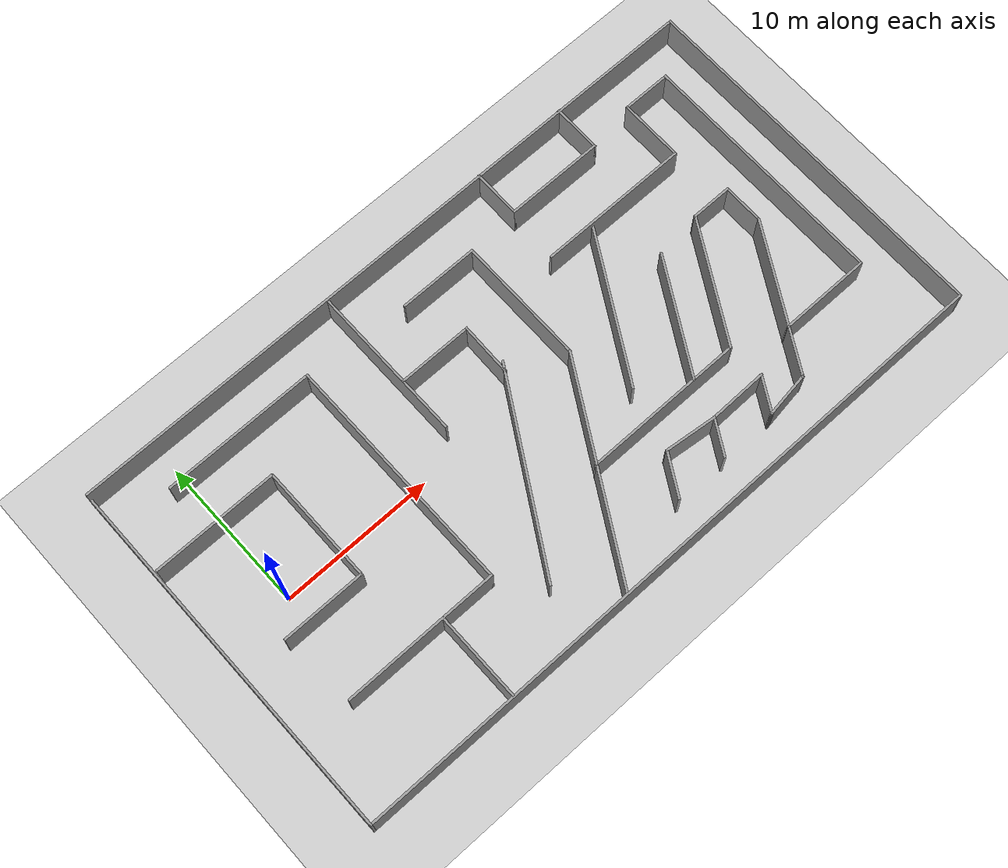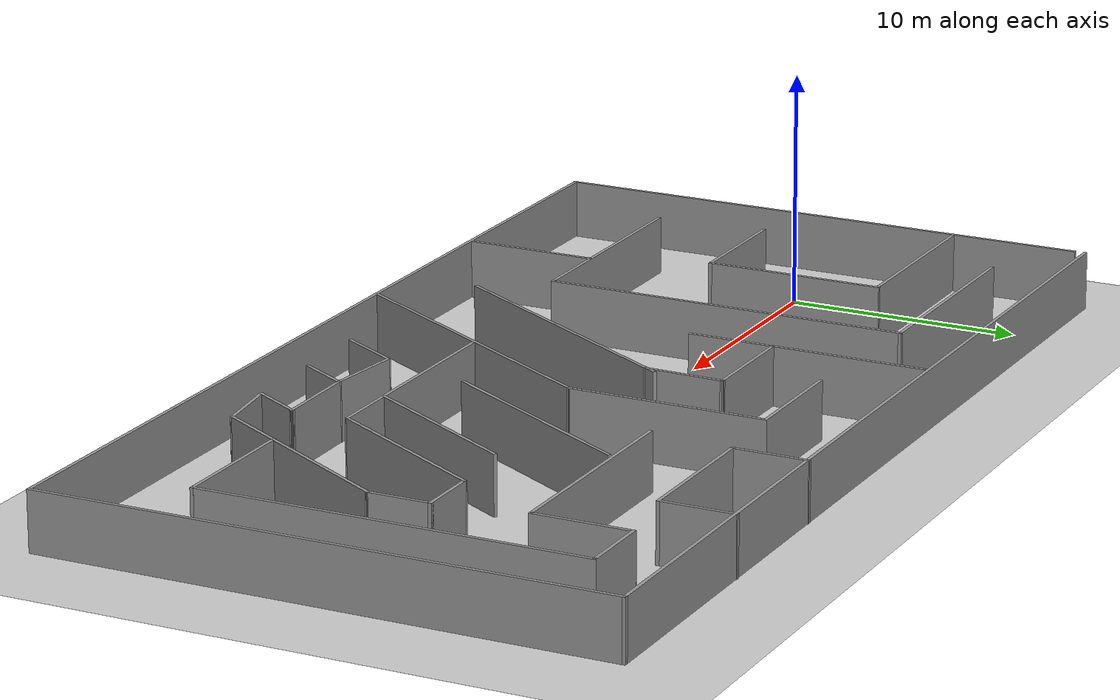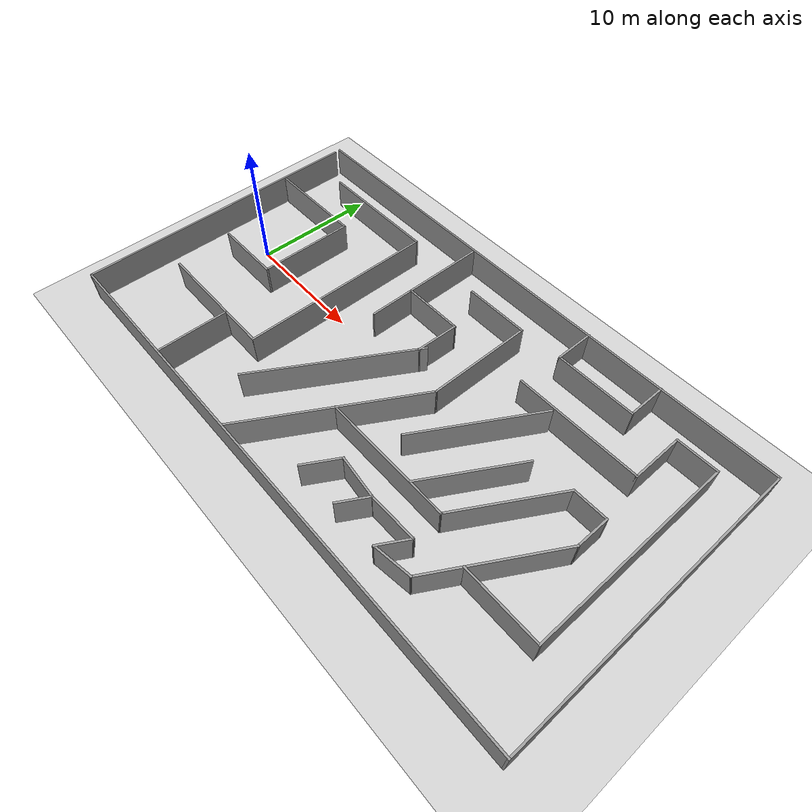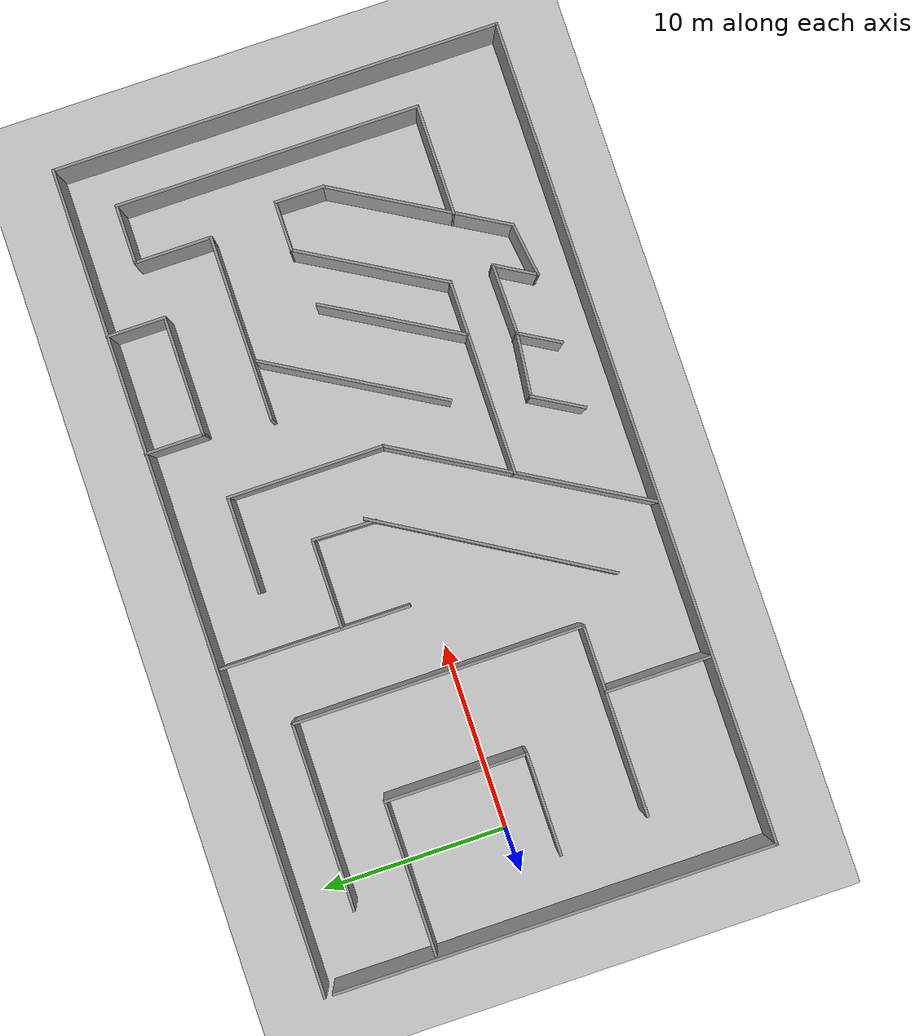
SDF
<sdf version="1.6">
 <world name="default">
  <light name="sun" type="directional">
   <pose>0 0 10 0 -0 0</pose>
   <diffuse>0.8 0.8 0.8 1</diffuse>
   <specular>0.2 0.2 0.2 1</specular>
   <attenuation>
    <range>1000</range>
    <constant>0.9</constant>
    <linear>0.01</linear>
    <quadratic>0.001</quadratic>
   </attenuation>
   <direction>-0.5 0.1 -0.9</direction>
  </light>
  <model name="ground_plane">
   <static>1</static>
   <link name="link">
    <collision name="collision">
     <geometry><plane><normal>0 0 1</normal><size>100 100</size></plane></geometry>
     <surface>
      <contact><collide_bitmask>65535</collide_bitmask></contact>
      <friction><ode><mu>100</mu><mu2>50</mu2></ode></friction>
     </surface>
    </collision>
    <visual name="visual">
     <cast_shadows>0</cast_shadows>
     <geometry><plane><normal>0 0 1</normal><size>100 100</size></plane></geometry>
     <material>
      <script><uri>file://media/materials/scripts/gazebo.material</uri><name>Gazebo/Grey</name></script>
     </material>
    </visual>
   </link>
  </model>
  <gravity>0 0 -9.8</gravity>
  <magnetic_field>6e-06 2.3e-05 -4.2e-05</magnetic_field>
  <atmosphere type="adiabatic"/>
  <physics name="default_physics" default="0" type="ode">
   <max_step_size>0.001</max_step_size>
   <real_time_factor>1</real_time_factor>
   <real_time_update_rate>1000</real_time_update_rate>
  </physics>
  <scene><ambient>0.4 0.4 0.4 1</ambient><background>0.7 0.7 0.7 1</background><shadows>1</shadows></scene>
  <audio><device>default</device></audio>
  <spherical_coordinates>
   <surface_model>EARTH_WGS84</surface_model>
   <latitude_deg>0</latitude_deg>
   <longitude_deg>0</longitude_deg>
   <elevation>0</elevation>
   <heading_deg>0</heading_deg>
  </spherical_coordinates>
  <model name="demo">
   <pose>17.5383 -0.666322 0 0 -0 0</pose>
   <link name="Wall_0">
    <collision name="Wall_0_Collision">
     <geometry><box><size>23.75 0.15 2.5</size></box></geometry>
     <pose>0 0 1.25 0 -0 0</pose>
    </collision>
    <visual name="Wall_0_Visual">
     <pose>0 0 1.25 0 -0 0</pose>
     <geometry><box><size>23.75 0.15 2.5</size></box></geometry>
     <material>
      <script><uri>file://media/materials/scripts/gazebo.material</uri><name>Gazebo/Grey</name></script>
      <ambient>1 1 1 1</ambient>
     </material>
     <meta><layer>0</layer></meta>
    </visual>
    <pose>-22.175 -0.266001 0 0 -0 -1.5708</pose>
   </link>
   <link name="Wall_1">
    <collision name="Wall_1_Collision">
     <geometry><box><size>44.5 0.15 2.5</size></box></geometry>
     <pose>0 0 1.25 0 -0 0</pose>
    </collision>
    <visual name="Wall_1_Visual">
     <pose>0 0 1.25 0 -0 0</pose>
     <geometry><box><size>44.5 0.15 2.5</size></box></geometry>
     <material>
      <script><uri>file://media/materials/scripts/gazebo.material</uri><name>Gazebo/Grey</name></script>
      <ambient>1 1 1 1</ambient>
     </material>
     <meta><layer>0</layer></meta>
    </visual>
    <pose>-0 -12.066 0 0 -0 0</pose>
   </link>
   <link name="Wall_10">
    <collision name="Wall_10_Collision">
     <geometry><box><size>10.25 0.15 2.5</size></box></geometry>
     <pose>0 0 1.25 0 -0 0</pose>
    </collision>
    <visual name="Wall_10_Visual">
     <pose>0 0 1.25 0 -0 0</pose>
     <geometry><box><size>10.25 0.15 2.5</size></box></geometry>
     <material>
      <script><uri>file://media/materials/scripts/gazebo.material</uri><name>Gazebo/Grey</name></script>
      <ambient>1 1 1 1</ambient>
     </material>
     <meta><layer>0</layer></meta>
    </visual>
    <pose>-13.7202 -6.34133 0 0 -0 0</pose>
   </link>
   <link name="Wall_11">
    <collision name="Wall_11_Collision">
     <geometry><box><size>15.75 0.15 2.5</size></box></geometry>
     <pose>0 0 1.25 0 -0 0</pose>
    </collision>
    <visual name="Wall_11_Visual">
     <pose>0 0 1.25 0 -0 0</pose>
     <geometry><box><size>15.75 0.15 2.5</size></box></geometry>
     <material>
      <script><uri>file://media/materials/scripts/gazebo.material</uri><name>Gazebo/Grey</name></script>
      <ambient>1 1 1 1</ambient>
     </material>
     <meta><layer>0</layer></meta>
    </visual>
    <pose>-8.67018 1.45867 0 0 -0 1.5708</pose>
   </link>
   <link name="Wall_12">
    <collision name="Wall_12_Collision">
     <geometry><box><size>10 0.15 2.5</size></box></geometry>
     <pose>0 0 1.25 0 -0 0</pose>
    </collision>
    <visual name="Wall_12_Visual">
     <pose>0 0 1.25 0 -0 0</pose>
     <geometry><box><size>10 0.15 2.5</size></box></geometry>
     <material>
      <script><uri>file://media/materials/scripts/gazebo.material</uri><name>Gazebo/Grey</name></script>
      <ambient>1 1 1 1</ambient>
     </material>
     <meta><layer>0</layer></meta>
    </visual>
    <pose>-13.5952 9.25867 0 0 -0 3.14159</pose>
   </link>
   <link name="Wall_15">
    <collision name="Wall_15_Collision">
     <geometry><box><size>5.75 0.15 2.5</size></box></geometry>
     <pose>0 0 1.25 0 -0 0</pose>
    </collision>
    <visual name="Wall_15_Visual">
     <pose>0 0 1.25 0 -0 0</pose>
     <geometry><box><size>5.75 0.15 2.5</size></box></geometry>
     <material>
      <script><uri>file://media/materials/scripts/gazebo.material</uri><name>Gazebo/Grey</name></script>
      <ambient>1 1 1 1</ambient>
     </material>
     <meta><layer>0</layer></meta>
    </visual>
    <pose>-12.1733 -9.18058 0 0 -0 1.5708</pose>
   </link>
   <link name="Wall_17">
    <collision name="Wall_17_Collision">
     <geometry><box><size>10.25 0.15 2.5</size></box></geometry>
     <pose>0 0 1.25 0 -0 0</pose>
    </collision>
    <visual name="Wall_17_Visual">
     <pose>0 0 1.25 0 -0 0</pose>
     <geometry><box><size>10.25 0.15 2.5</size></box></geometry>
     <material>
      <script><uri>file://media/materials/scripts/gazebo.material</uri><name>Gazebo/Grey</name></script>
      <ambient>1 1 1 1</ambient>
     </material>
     <meta><layer>0</layer></meta>
    </visual>
    <pose>-4.88487 6.8032 0 0 -0 -1.5708</pose>
   </link>
   <link name="Wall_19">
    <collision name="Wall_19_Collision">
     <geometry><box><size>13.3305 0.15 2.5</size></box></geometry>
     <pose>0 0 1.25 0 -0 0</pose>
    </collision>
    <visual name="Wall_19_Visual">
     <pose>0 0 1.25 0 -0 0</pose>
     <geometry><box><size>13.3305 0.15 2.5</size></box></geometry>
     <material>
      <script><uri>file://media/materials/scripts/gazebo.material</uri><name>Gazebo/Grey</name></script>
      <ambient>1 1 1 1</ambient>
     </material>
     <meta><layer>0</layer></meta>
    </visual>
    <pose>-3.29203 -3.18254 0 0 -0 -2.10488</pose>
   </link>
   <link name="Wall_2">
    <collision name="Wall_2_Collision">
     <geometry><box><size>24.25 0.15 2.5</size></box></geometry>
     <pose>0 0 1.25 0 -0 0</pose>
    </collision>
    <visual name="Wall_2_Visual">
     <pose>0 0 1.25 0 -0 0</pose>
     <geometry><box><size>24.25 0.15 2.5</size></box></geometry>
     <material>
      <script><uri>file://media/materials/scripts/gazebo.material</uri><name>Gazebo/Grey</name></script>
      <ambient>1 1 1 1</ambient>
     </material>
     <meta><layer>0</layer></meta>
    </visual>
    <pose>22.175 -0.016001 0 0 -0 1.5708</pose>
   </link>
   <link name="Wall_22">
    <collision name="Wall_22_Collision">
     <geometry><box><size>4.9096 0.15 2.5</size></box></geometry>
     <pose>0 0 1.25 0 -0 0</pose>
    </collision>
    <visual name="Wall_22_Visual">
     <pose>0 0 1.25 0 -0 0</pose>
     <geometry><box><size>4.9096 0.15 2.5</size></box></geometry>
     <material>
      <script><uri>file://media/materials/scripts/gazebo.material</uri><name>Gazebo/Grey</name></script>
      <ambient>1 1 1 1</ambient>
     </material>
     <meta><layer>0</layer></meta>
    </visual>
    <pose>-2.50507 5.36275 0 0 -0 0</pose>
   </link>
   <link name="Wall_25">
    <collision name="Wall_25_Collision">
     <geometry><box><size>3.50253 0.15 2.5</size></box></geometry>
     <pose>0 0 1.25 0 -0 0</pose>
    </collision>
    <visual name="Wall_25_Visual">
     <pose>0 0 1.25 0 -0 0</pose>
     <geometry><box><size>3.50253 0.15 2.5</size></box></geometry>
     <material>
      <script><uri>file://media/materials/scripts/gazebo.material</uri><name>Gazebo/Grey</name></script>
      <ambient>1 1 1 1</ambient>
     </material>
     <meta><layer>0</layer></meta>
    </visual>
    <pose>-0.164254 3.68694 0 0 -0 1.54754</pose>
   </link>
   <link name="Wall_27">
    <collision name="Wall_27_Collision">
     <geometry><box><size>5.25 0.15 2.5</size></box></geometry>
     <pose>0 0 1.25 0 -0 0</pose>
    </collision>
    <visual name="Wall_27_Visual">
     <pose>0 0 1.25 0 -0 0</pose>
     <geometry><box><size>5.25 0.15 2.5</size></box></geometry>
     <material>
      <script><uri>file://media/materials/scripts/gazebo.material</uri><name>Gazebo/Grey</name></script>
      <ambient>1 1 1 1</ambient>
     </material>
     <meta><layer>0</layer></meta>
    </visual>
    <pose>0.750753 8.76758 0 0 -0 0</pose>
   </link>
   <link name="Wall_28">
    <collision name="Wall_28_Collision">
     <geometry><box><size>8.5 0.15 2.5</size></box></geometry>
     <pose>0 0 1.25 0 -0 0</pose>
    </collision>
    <visual name="Wall_28_Visual">
     <pose>0 0 1.25 0 -0 0</pose>
     <geometry><box><size>8.5 0.15 2.5</size></box></geometry>
     <material>
      <script><uri>file://media/materials/scripts/gazebo.material</uri><name>Gazebo/Grey</name></script>
      <ambient>1 1 1 1</ambient>
     </material>
     <meta><layer>0</layer></meta>
    </visual>
    <pose>3.30075 4.59258 0 0 -0 -1.5708</pose>
   </link>
   <link name="Wall_29">
    <collision name="Wall_29_Collision">
     <geometry><box><size>14.5 0.15 2.5</size></box></geometry>
     <pose>0 0 1.25 0 -0 0</pose>
    </collision>
    <visual name="Wall_29_Visual">
     <pose>0 0 1.25 0 -0 0</pose>
     <geometry><box><size>14.5 0.15 2.5</size></box></geometry>
     <material>
      <script><uri>file://media/materials/scripts/gazebo.material</uri><name>Gazebo/Grey</name></script>
      <ambient>1 1 1 1</ambient>
     </material>
     <meta><layer>0</layer></meta>
    </visual>
    <pose>-0.286747 -5.79615 0 0 -0 -2.0944</pose>
   </link>
   <link name="Wall_3">
    <collision name="Wall_3_Collision">
     <geometry><box><size>44.5 0.15 2.5</size></box></geometry>
     <pose>0 0 1.25 0 -0 0</pose>
    </collision>
    <visual name="Wall_3_Visual">
     <pose>0 0 1.25 0 -0 0</pose>
     <geometry><box><size>44.5 0.15 2.5</size></box></geometry>
     <material>
      <script><uri>file://media/materials/scripts/gazebo.material</uri><name>Gazebo/Grey</name></script>
      <ambient>1 1 1 1</ambient>
     </material>
     <meta><layer>0</layer></meta>
    </visual>
    <pose>-0 12.034 0 0 -0 3.14159</pose>
   </link>
   <link name="Wall_31">
    <collision name="Wall_31_Collision">
     <geometry><box><size>3.25 0.15 2.5</size></box></geometry>
     <pose>0 0 1.25 0 -0 0</pose>
    </collision>
    <visual name="Wall_31_Visual">
     <pose>0 0 1.25 0 -0 0</pose>
     <geometry><box><size>3.25 0.15 2.5</size></box></geometry>
     <material>
      <script><uri>file://media/materials/scripts/gazebo.material</uri><name>Gazebo/Grey</name></script>
      <ambient>1 1 1 1</ambient>
     </material>
     <meta><layer>0</layer></meta>
    </visual>
    <pose>6.76602 10.516 0 0 -0 -1.5708</pose>
   </link>
   <link name="Wall_32">
    <collision name="Wall_32_Collision">
     <geometry><box><size>6.5 0.15 2.5</size></box></geometry>
     <pose>0 0 1.25 0 -0 0</pose>
    </collision>
    <visual name="Wall_32_Visual">
     <pose>0 0 1.25 0 -0 0</pose>
     <geometry><box><size>6.5 0.15 2.5</size></box></geometry>
     <material>
      <script><uri>file://media/materials/scripts/gazebo.material</uri><name>Gazebo/Grey</name></script>
      <ambient>1 1 1 1</ambient>
     </material>
     <meta><layer>0</layer></meta>
    </visual>
    <pose>9.94102 8.966 0 0 -0 0</pose>
   </link>
   <link name="Wall_33">
    <collision name="Wall_33_Collision">
     <geometry><box><size>3.25 0.15 2.5</size></box></geometry>
     <pose>0 0 1.25 0 -0 0</pose>
    </collision>
    <visual name="Wall_33_Visual">
     <pose>0 0 1.25 0 -0 0</pose>
     <geometry><box><size>3.25 0.15 2.5</size></box></geometry>
     <material>
      <script><uri>file://media/materials/scripts/gazebo.material</uri><name>Gazebo/Grey</name></script>
      <ambient>1 1 1 1</ambient>
     </material>
     <meta><layer>0</layer></meta>
    </visual>
    <pose>13.116 10.516 0 0 -0 1.5708</pose>
   </link>
   <link name="Wall_35">
    <collision name="Wall_35_Collision">
     <geometry><box><size>10 0.15 2.5</size></box></geometry>
     <pose>0 0 1.25 0 -0 0</pose>
    </collision>
    <visual name="Wall_35_Visual">
     <pose>0 0 1.25 0 -0 0</pose>
     <geometry><box><size>10 0.15 2.5</size></box></geometry>
     <material>
      <script><uri>file://media/materials/scripts/gazebo.material</uri><name>Gazebo/Grey</name></script>
      <ambient>1 1 1 1</ambient>
     </material>
     <meta><layer>0</layer></meta>
    </visual>
    <pose>11.3718 5.41595 0 0 -0 0</pose>
   </link>
   <link name="Wall_36">
    <collision name="Wall_36_Collision">
     <geometry><box><size>4.25 0.15 2.5</size></box></geometry>
     <pose>0 0 1.25 0 -0 0</pose>
    </collision>
    <visual name="Wall_36_Visual">
     <pose>0 0 1.25 0 -0 0</pose>
     <geometry><box><size>4.25 0.15 2.5</size></box></geometry>
     <material>
      <script><uri>file://media/materials/scripts/gazebo.material</uri><name>Gazebo/Grey</name></script>
      <ambient>1 1 1 1</ambient>
     </material>
     <meta><layer>0</layer></meta>
    </visual>
    <pose>16.2968 7.46595 0 0 -0 1.5708</pose>
   </link>
   <link name="Wall_37">
    <collision name="Wall_37_Collision">
     <geometry><box><size>3.25 0.15 2.5</size></box></geometry>
     <pose>0 0 1.25 0 -0 0</pose>
    </collision>
    <visual name="Wall_37_Visual">
     <pose>0 0 1.25 0 -0 0</pose>
     <geometry><box><size>3.25 0.15 2.5</size></box></geometry>
     <material>
      <script><uri>file://media/materials/scripts/gazebo.material</uri><name>Gazebo/Grey</name></script>
      <ambient>1 1 1 1</ambient>
     </material>
     <meta><layer>0</layer></meta>
    </visual>
    <pose>17.8468 9.51595 0 0 -0 0</pose>
   </link>
   <link name="Wall_38">
    <collision name="Wall_38_Collision">
     <geometry><box><size>16.5 0.15 2.5</size></box></geometry>
     <pose>0 0 1.25 0 -0 0</pose>
    </collision>
    <visual name="Wall_38_Visual">
     <pose>0 0 1.25 0 -0 0</pose>
     <geometry><box><size>16.5 0.15 2.5</size></box></geometry>
     <material>
      <script><uri>file://media/materials/scripts/gazebo.material</uri><name>Gazebo/Grey</name></script>
      <ambient>1 1 1 1</ambient>
     </material>
     <meta><layer>0</layer></meta>
    </visual>
    <pose>19.3968 1.34095 0 0 -0 -1.5708</pose>
   </link>
   <link name="Wall_39">
    <collision name="Wall_39_Collision">
     <geometry><box><size>6 0.15 2.5</size></box></geometry>
     <pose>0 0 1.25 0 -0 0</pose>
    </collision>
    <visual name="Wall_39_Visual">
     <pose>0 0 1.25 0 -0 0</pose>
     <geometry><box><size>6 0.15 2.5</size></box></geometry>
     <material>
      <script><uri>file://media/materials/scripts/gazebo.material</uri><name>Gazebo/Grey</name></script>
      <ambient>1 1 1 1</ambient>
     </material>
     <meta><layer>0</layer></meta>
    </visual>
    <pose>16.4718 -6.83405 0 0 -0 3.14159</pose>
   </link>
   <link name="Wall_40">
    <collision name="Wall_40_Collision">
     <geometry><box><size>7 0.15 2.5</size></box></geometry>
     <pose>0 0 1.25 0 -0 0</pose>
    </collision>
    <visual name="Wall_40_Visual">
     <pose>0 0 1.25 0 -0 0</pose>
     <geometry><box><size>7 0.15 2.5</size></box></geometry>
     <material>
      <script><uri>file://media/materials/scripts/gazebo.material</uri><name>Gazebo/Grey</name></script>
      <ambient>1 1 1 1</ambient>
     </material>
     <meta><layer>0</layer></meta>
    </visual>
    <pose>15.2593 -3.86791 0 0 -0 1.0472</pose>
   </link>
   <link name="Wall_41">
    <collision name="Wall_41_Collision">
     <geometry><box><size>2.75 0.15 2.5</size></box></geometry>
     <pose>0 0 1.25 0 -0 0</pose>
    </collision>
    <visual name="Wall_41_Visual">
     <pose>0 0 1.25 0 -0 0</pose>
     <geometry><box><size>2.75 0.15 2.5</size></box></geometry>
     <material>
      <script><uri>file://media/materials/scripts/gazebo.material</uri><name>Gazebo/Grey</name></script>
      <ambient>1 1 1 1</ambient>
     </material>
     <meta><layer>0</layer></meta>
    </visual>
    <pose>16.9718 0.398227 0 0 -0 1.5708</pose>
   </link>
   <link name="Wall_42">
    <collision name="Wall_42_Collision">
     <geometry><box><size>2.75 0.15 2.5</size></box></geometry>
     <pose>0 0 1.25 0 -0 0</pose>
    </collision>
    <visual name="Wall_42_Visual">
     <pose>0 0 1.25 0 -0 0</pose>
     <geometry><box><size>2.75 0.15 2.5</size></box></geometry>
     <material>
      <script><uri>file://media/materials/scripts/gazebo.material</uri><name>Gazebo/Grey</name></script>
      <ambient>1 1 1 1</ambient>
     </material>
     <meta><layer>0</layer></meta>
    </visual>
    <pose>15.6718 1.69823 0 0 -0 3.14159</pose>
   </link>
   <link name="Wall_43">
    <collision name="Wall_43_Collision">
     <geometry><box><size>8.5 0.15 2.5</size></box></geometry>
     <pose>0 0 1.25 0 -0 0</pose>
    </collision>
    <visual name="Wall_43_Visual">
     <pose>0 0 1.25 0 -0 0</pose>
     <geometry><box><size>8.5 0.15 2.5</size></box></geometry>
     <material>
      <script><uri>file://media/materials/scripts/gazebo.material</uri><name>Gazebo/Grey</name></script>
      <ambient>1 1 1 1</ambient>
     </material>
     <meta><layer>0</layer></meta>
    </visual>
    <pose>12.2843 -1.91743 0 0 -0 -2.0944</pose>
   </link>
   <link name="Wall_44">
    <collision name="Wall_44_Collision">
     <geometry><box><size>10.5 0.15 2.5</size></box></geometry>
     <pose>0 0 1.25 0 -0 0</pose>
    </collision>
    <visual name="Wall_44_Visual">
     <pose>0 0 1.25 0 -0 0</pose>
     <geometry><box><size>10.5 0.15 2.5</size></box></geometry>
     <material>
      <script><uri>file://media/materials/scripts/gazebo.material</uri><name>Gazebo/Grey</name></script>
      <ambient>1 1 1 1</ambient>
     </material>
     <meta><layer>0</layer></meta>
    </visual>
    <pose>5.02181 -5.53308 0 0 -0 3.14159</pose>
   </link>
   <link name="Wall_46">
    <collision name="Wall_46_Collision">
     <geometry><box><size>3 0.15 2.5</size></box></geometry>
     <pose>0 0 1.25 0 -0 0</pose>
    </collision>
    <visual name="Wall_46_Visual">
     <pose>0 0 1.25 0 -0 0</pose>
     <geometry><box><size>3 0.15 2.5</size></box></geometry>
     <material>
      <script><uri>file://media/materials/scripts/gazebo.material</uri><name>Gazebo/Grey</name></script>
      <ambient>1 1 1 1</ambient>
     </material>
     <meta><layer>0</layer></meta>
    </visual>
    <pose>2.59549 -8.79903 0 0 -0 -2.0944</pose>
   </link>
   <link name="Wall_48">
    <collision name="Wall_48_Collision">
     <geometry><box><size>2.5 0.15 2.5</size></box></geometry>
     <pose>0 0 1.25 0 -0 0</pose>
    </collision>
    <visual name="Wall_48_Visual">
     <pose>0 0 1.25 0 -0 0</pose>
     <geometry><box><size>2.5 0.15 2.5</size></box></geometry>
     <material>
      <script><uri>file://media/materials/scripts/gazebo.material</uri><name>Gazebo/Grey</name></script>
      <ambient>1 1 1 1</ambient>
     </material>
     <meta><layer>0</layer></meta>
    </visual>
    <pose>6.01891 -8.95493 0 0 -0 -2.0944</pose>
   </link>
   <link name="Wall_5">
    <collision name="Wall_5_Collision">
     <geometry><box><size>8.25 0.15 2.5</size></box></geometry>
     <pose>0 0 1.25 0 -0 0</pose>
    </collision>
    <visual name="Wall_5_Visual">
     <pose>0 0 1.25 0 -0 0</pose>
     <geometry><box><size>8.25 0.15 2.5</size></box></geometry>
     <material>
      <script><uri>file://media/materials/scripts/gazebo.material</uri><name>Gazebo/Grey</name></script>
      <ambient>1 1 1 1</ambient>
     </material>
     <meta><layer>0</layer></meta>
    </visual>
    <pose>-17.9122 6.05436 0 0 -0 0</pose>
   </link>
   <link name="Wall_50">
    <collision name="Wall_50_Collision">
     <geometry><box><size>2.5 0.15 2.5</size></box></geometry>
     <pose>0 0 1.25 0 -0 0</pose>
    </collision>
    <visual name="Wall_50_Visual">
     <pose>0 0 1.25 0 -0 0</pose>
     <geometry><box><size>2.5 0.15 2.5</size></box></geometry>
     <material>
      <script><uri>file://media/materials/scripts/gazebo.material</uri><name>Gazebo/Grey</name></script>
      <ambient>1 1 1 1</ambient>
     </material>
     <meta><layer>0</layer></meta>
    </visual>
    <pose>9.74294 -8.90173 0 0 -0 -2.0944</pose>
   </link>
   <link name="Wall_52">
    <collision name="Wall_52_Collision">
     <geometry><box><size>3.25 0.15 2.5</size></box></geometry>
     <pose>0 0 1.25 0 -0 0</pose>
    </collision>
    <visual name="Wall_52_Visual">
     <pose>0 0 1.25 0 -0 0</pose>
     <geometry><box><size>3.25 0.15 2.5</size></box></geometry>
     <material>
      <script><uri>file://media/materials/scripts/gazebo.material</uri><name>Gazebo/Grey</name></script>
      <ambient>1 1 1 1</ambient>
     </material>
     <meta><layer>0</layer></meta>
    </visual>
    <pose>12.7718 -8.17639 0 0 -0 -2.0944</pose>
   </link>
   <link name="Wall_53">
    <collision name="Wall_53_Collision">
     <geometry><box><size>3.01947 0.15 2.5</size></box></geometry>
     <pose>0 0 1.25 0 -0 0</pose>
    </collision>
    <visual name="Wall_53_Visual">
     <pose>0 0 1.25 0 -0 0</pose>
     <geometry><box><size>3.01947 0.15 2.5</size></box></geometry>
     <material>
      <script><uri>file://media/materials/scripts/gazebo.material</uri><name>Gazebo/Grey</name></script>
      <ambient>1 1 1 1</ambient>
     </material>
     <meta><layer>0</layer></meta>
    </visual>
    <pose>10.5761 -9.71902 0 0 -0 -3.00153</pose>
   </link>
   <link name="Wall_55">
    <collision name="Wall_55_Collision">
     <geometry><box><size>3.46938 0.15 2.5</size></box></geometry>
     <pose>0 0 1.25 0 -0 0</pose>
    </collision>
    <visual name="Wall_55_Visual">
     <pose>0 0 1.25 0 -0 0</pose>
     <geometry><box><size>3.46938 0.15 2.5</size></box></geometry>
     <material>
      <script><uri>file://media/materials/scripts/gazebo.material</uri><name>Gazebo/Grey</name></script>
      <ambient>1 1 1 1</ambient>
     </material>
     <meta><layer>0</layer></meta>
    </visual>
    <pose>4.9572 -7.75115 0 0 -0 -0.112427</pose>
   </link>
   <link name="Wall_57">
    <collision name="Wall_57_Collision">
     <geometry><box><size>3.87441 0.15 2.5</size></box></geometry>
     <pose>0 0 1.25 0 -0 0</pose>
    </collision>
    <visual name="Wall_57_Visual">
     <pose>0 0 1.25 0 -0 0</pose>
     <geometry><box><size>3.87441 0.15 2.5</size></box></geometry>
     <material>
      <script><uri>file://media/materials/scripts/gazebo.material</uri><name>Gazebo/Grey</name></script>
      <ambient>1 1 1 1</ambient>
     </material>
     <meta><layer>0</layer></meta>
    </visual>
    <pose>8.46843 -7.91075 0 0 -0 0.014285</pose>
   </link>
   <link name="Wall_59">
    <collision name="Wall_59_Collision">
     <geometry><box><size>10.25 0.15 2.5</size></box></geometry>
     <pose>0 0 1.25 0 -0 0</pose>
    </collision>
    <visual name="Wall_59_Visual">
     <pose>0 0 1.25 0 -0 0</pose>
     <geometry><box><size>10.25 0.15 2.5</size></box></geometry>
     <material>
      <script><uri>file://media/materials/scripts/gazebo.material</uri><name>Gazebo/Grey</name></script>
      <ambient>1 1 1 1</ambient>
     </material>
     <meta><layer>0</layer></meta>
    </visual>
    <pose>6.95424 0.776523 0 0 -0 -2.0944</pose>
   </link>
   <link name="Wall_6">
    <collision name="Wall_6_Collision">
     <geometry><box><size>7.75 0.15 2.5</size></box></geometry>
     <pose>0 0 1.25 0 -0 0</pose>
    </collision>
    <visual name="Wall_6_Visual">
     <pose>0 0 1.25 0 -0 0</pose>
     <geometry><box><size>7.75 0.15 2.5</size></box></geometry>
     <material>
      <script><uri>file://media/materials/scripts/gazebo.material</uri><name>Gazebo/Grey</name></script>
      <ambient>1 1 1 1</ambient>
     </material>
     <meta><layer>0</layer></meta>
    </visual>
    <pose>-13.8622 2.25436 0 0 -0 -1.5708</pose>
   </link>
   <link name="Wall_61">
    <collision name="Wall_61_Collision">
     <geometry><box><size>8 0.15 2.5</size></box></geometry>
     <pose>0 0 1.25 0 -0 0</pose>
    </collision>
    <visual name="Wall_61_Visual">
     <pose>0 0 1.25 0 -0 0</pose>
     <geometry><box><size>8 0.15 2.5</size></box></geometry>
     <material>
      <script><uri>file://media/materials/scripts/gazebo.material</uri><name>Gazebo/Grey</name></script>
      <ambient>1 1 1 1</ambient>
     </material>
     <meta><layer>0</layer></meta>
    </visual>
    <pose>9.31372 -2.09098 0 0 -0 1.0472</pose>
   </link>
   <link name="Wall_7">
    <collision name="Wall_7_Collision">
     <geometry><box><size>5.5 0.15 2.5</size></box></geometry>
     <pose>0 0 1.25 0 -0 0</pose>
    </collision>
    <visual name="Wall_7_Visual">
     <pose>0 0 1.25 0 -0 0</pose>
     <geometry><box><size>5.5 0.15 2.5</size></box></geometry>
     <material>
      <script><uri>file://media/materials/scripts/gazebo.material</uri><name>Gazebo/Grey</name></script>
      <ambient>1 1 1 1</ambient>
     </material>
     <meta><layer>0</layer></meta>
    </visual>
    <pose>-16.5372 -1.54564 0 0 -0 3.14159</pose>
   </link>
   <static>1</static>
  </model>
 </world>
</sdf>
